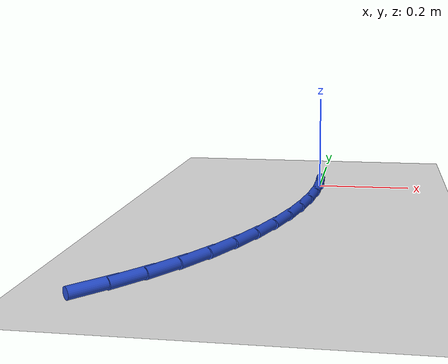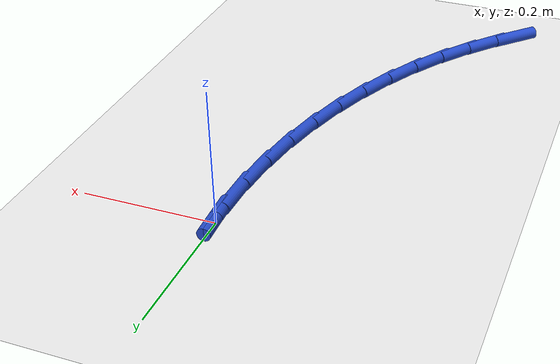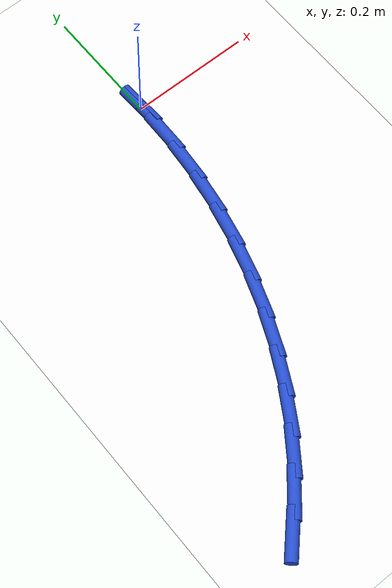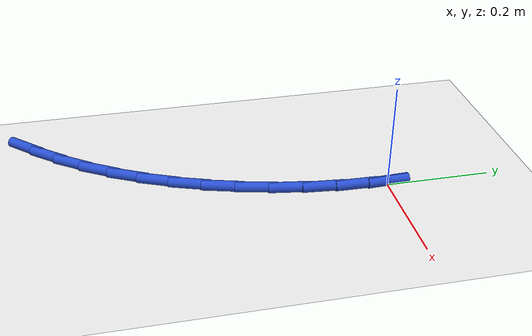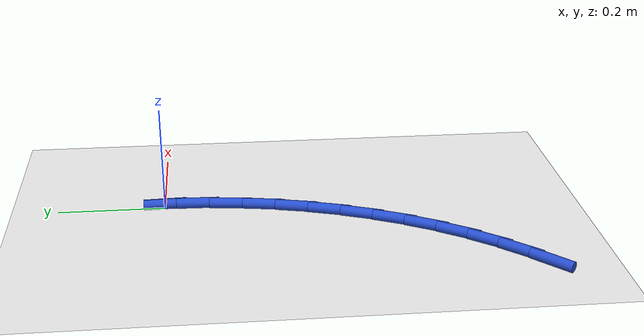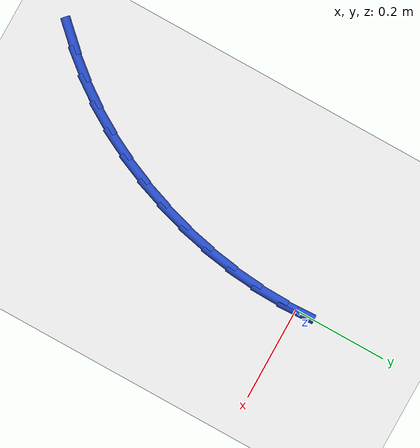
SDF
<sdf version="1.6">
 <world name="default">
  <model name="ground_plane">
   <static>1</static>
   <link name="link">
    <collision name="collision">
     <geometry><plane><normal>0 0 1</normal><size>100 100</size></plane></geometry>
     <surface><friction><ode><mu>100</mu><mu2>50</mu2></ode></friction></surface>
    </collision>
    <visual name="visual">
     <cast_shadows>0</cast_shadows>
     <geometry><plane><normal>0 0 1</normal><size>100 100</size></plane></geometry>
     <material>
      <script><uri>file://media/materials/scripts/gazebo.material</uri><name>Gazebo/WhiteGlow</name></script>
     </material>
    </visual>
   </link>
  </model>
  <model name="line">
   <link name="link_0">
    <pose>-6.938893903907228e-17 0.0 0.01 0 1.57 -1.5274081292418682</pose>
    <collision name="collision">
     <geometry><cylinder><radius>0.01</radius><length>0.08</length></cylinder></geometry>
    </collision>
    <visual name="visual">
     <material>
      <script><name>Gazebo/Blue</name><uri>file://media/materials/scripts/gazebo.material</uri></script>
     </material>
     <geometry><cylinder><radius>0.01</radius><length>0.08</length></cylinder></geometry>
    </visual>
   </link>
   <link name="link_98">
    <pose>-0.2620222068106121 -0.6634474273652201 0.01 0 1.57 0.8126979251147505</pose>
    <collision name="collision">
     <geometry><cylinder><radius>0.01</radius><length>0.08</length></cylinder></geometry>
    </collision>
    <visual name="visual">
     <material>
      <script><name>Gazebo/Blue</name><uri>file://media/materials/scripts/gazebo.material</uri></script>
     </material>
     <geometry><cylinder><radius>0.01</radius><length>0.08</length></cylinder></geometry>
    </visual>
   </link>
   <link name="link_99">
    <pose>-0.22153678480549482 -0.6206889006705932 0.01 0 1.57 0.879173818482099</pose>
    <collision name="collision">
     <geometry><cylinder><radius>0.01</radius><length>0.08</length></cylinder></geometry>
    </collision>
    <visual name="visual">
     <material>
      <script><name>Gazebo/Blue</name><uri>file://media/materials/scripts/gazebo.material</uri></script>
     </material>
     <geometry><cylinder><radius>0.01</radius><length>0.08</length></cylinder></geometry>
    </visual>
   </link>
   <link name="link_100">
    <pose>-0.18398809792483248 -0.5753439412519994 0.01 0 1.57 0.9525159576978269</pose>
    <collision name="collision">
     <geometry><cylinder><radius>0.01</radius><length>0.08</length></cylinder></geometry>
    </collision>
    <visual name="visual">
     <material>
      <script><name>Gazebo/Blue</name><uri>file://media/materials/scripts/gazebo.material</uri></script>
     </material>
     <geometry><cylinder><radius>0.01</radius><length>0.08</length></cylinder></geometry>
    </visual>
   </link>
   <link name="link_101">
    <pose>-0.14959281269120378 -0.526989511594634 0.01 0 1.57 1.0279771237727486</pose>
    <collision name="collision">
     <geometry><cylinder><radius>0.01</radius><length>0.08</length></cylinder></geometry>
    </collision>
    <visual name="visual">
     <material>
      <script><name>Gazebo/Blue</name><uri>file://media/materials/scripts/gazebo.material</uri></script>
     </material>
     <geometry><cylinder><radius>0.01</radius><length>0.08</length></cylinder></geometry>
    </visual>
   </link>
   <link name="link_102">
    <pose>-0.11852318757266923 -0.47548734462013703 0.01 0 1.57 1.0995738151605616</pose>
    <collision name="collision">
     <geometry><cylinder><radius>0.01</radius><length>0.08</length></cylinder></geometry>
    </collision>
    <visual name="visual">
     <material>
      <script><name>Gazebo/Blue</name><uri>file://media/materials/scripts/gazebo.material</uri></script>
     </material>
     <geometry><cylinder><radius>0.01</radius><length>0.08</length></cylinder></geometry>
    </visual>
   </link>
   <link name="link_103">
    <pose>-0.09087107074525488 -0.42121481110476255 0.01 0 1.57 1.1675578349898466</pose>
    <collision name="collision">
     <geometry><cylinder><radius>0.01</radius><length>0.08</length></cylinder></geometry>
    </collision>
    <visual name="visual">
     <material>
      <script><name>Gazebo/Blue</name><uri>file://media/materials/scripts/gazebo.material</uri></script>
     </material>
     <geometry><cylinder><radius>0.01</radius><length>0.08</length></cylinder></geometry>
    </visual>
   </link>
   <link name="link_104">
    <pose>-0.06671983738628486 -0.36460361565145466 0.01 0 1.57 1.2328186220375337</pose>
    <collision name="collision">
     <geometry><cylinder><radius>0.01</radius><length>0.08</length></cylinder></geometry>
    </collision>
    <visual name="visual">
     <material>
      <script><name>Gazebo/Blue</name><uri>file://media/materials/scripts/gazebo.material</uri></script>
     </material>
     <geometry><cylinder><radius>0.01</radius><length>0.08</length></cylinder></geometry>
    </visual>
   </link>
   <link name="link_105">
    <pose>-0.046152862673084695 -0.30608546286316096 0.01 0 1.57 1.296224287802002</pose>
    <collision name="collision">
     <geometry><cylinder><radius>0.01</radius><length>0.08</length></cylinder></geometry>
    </collision>
    <visual name="visual">
     <material>
      <script><name>Gazebo/Blue</name><uri>file://media/materials/scripts/gazebo.material</uri></script>
     </material>
     <geometry><cylinder><radius>0.01</radius><length>0.08</length></cylinder></geometry>
    </visual>
   </link>
   <link name="link_106">
    <pose>-0.029253521782978888 -0.24609205734282602 0.01 0 1.57 1.358622651502841</pose>
    <collision name="collision">
     <geometry><cylinder><radius>0.01</radius><length>0.08</length></cylinder></geometry>
    </collision>
    <visual name="visual">
     <material>
      <script><name>Gazebo/Blue</name><uri>file://media/materials/scripts/gazebo.material</uri></script>
     </material>
     <geometry><cylinder><radius>0.01</radius><length>0.08</length></cylinder></geometry>
    </visual>
   </link>
   <link name="link_107">
    <pose>-0.01610518989329272 -0.18505510369339712 0.01 0 1.57 1.4208495599144562</pose>
    <collision name="collision">
     <geometry><cylinder><radius>0.01</radius><length>0.08</length></cylinder></geometry>
    </collision>
    <visual name="visual">
     <material>
      <script><name>Gazebo/Blue</name><uri>file://media/materials/scripts/gazebo.material</uri></script>
     </material>
     <geometry><cylinder><radius>0.01</radius><length>0.08</length></cylinder></geometry>
    </visual>
   </link>
   <link name="link_108">
    <pose>-0.006791242181350828 -0.12340630651781868 0.01 0 1.57 1.4837408178028242</pose>
    <collision name="collision">
     <geometry><cylinder><radius>0.01</radius><length>0.08</length></cylinder></geometry>
    </collision>
    <visual name="visual">
     <material>
      <script><name>Gazebo/Blue</name><uri>file://media/materials/scripts/gazebo.material</uri></script>
     </material>
     <geometry><cylinder><radius>0.01</radius><length>0.08</length></cylinder></geometry>
    </visual>
   </link>
   <link name="link_109">
    <pose>-0.001395053824478347 -0.0615773704190382 0.01 0 1.57 1.5481449012447759</pose>
    <collision name="collision">
     <geometry><cylinder><radius>0.01</radius><length>0.08</length></cylinder></geometry>
    </collision>
    <visual name="visual">
     <material>
      <script><name>Gazebo/Blue</name><uri>file://media/materials/scripts/gazebo.material</uri></script>
     </material>
     <geometry><cylinder><radius>0.01</radius><length>0.08</length></cylinder></geometry>
    </visual>
   </link>
   <link name="link_110">
    <pose>-7.632783294297951e-17 -5.551115123125783e-17 0.01 0 1.57 -1.5266588947975372</pose>
    <collision name="collision">
     <geometry><cylinder><radius>0.01</radius><length>0.08</length></cylinder></geometry>
    </collision>
    <visual name="visual">
     <material>
      <script><name>Gazebo/Blue</name><uri>file://media/materials/scripts/gazebo.material</uri></script>
     </material>
     <geometry><cylinder><radius>0.01</radius><length>0.08</length></cylinder></geometry>
    </visual>
   </link>
  </model>
 </world>
</sdf>
